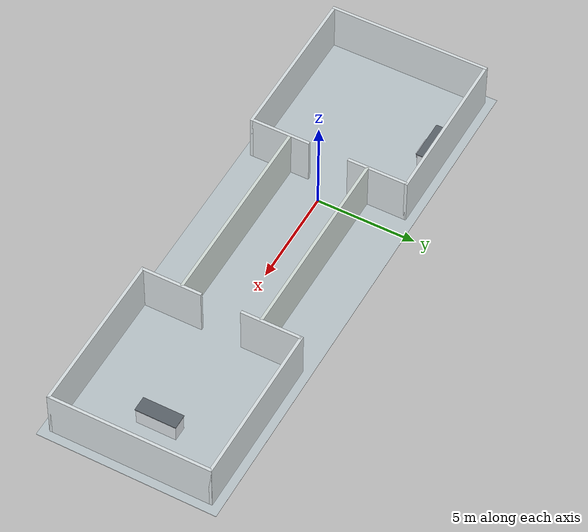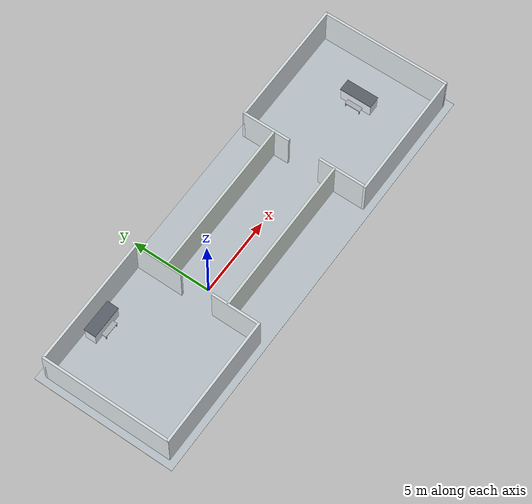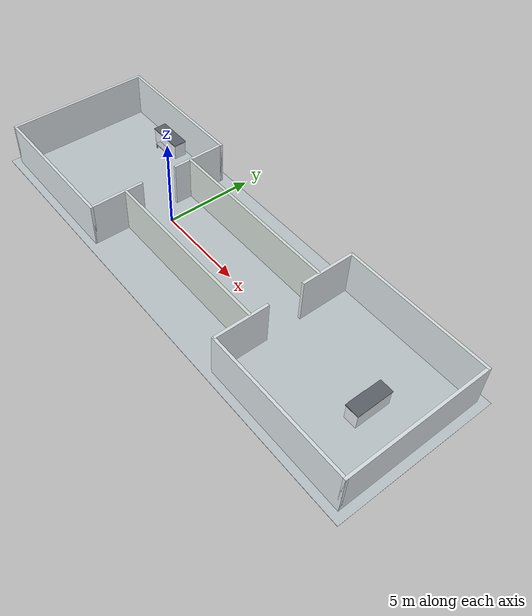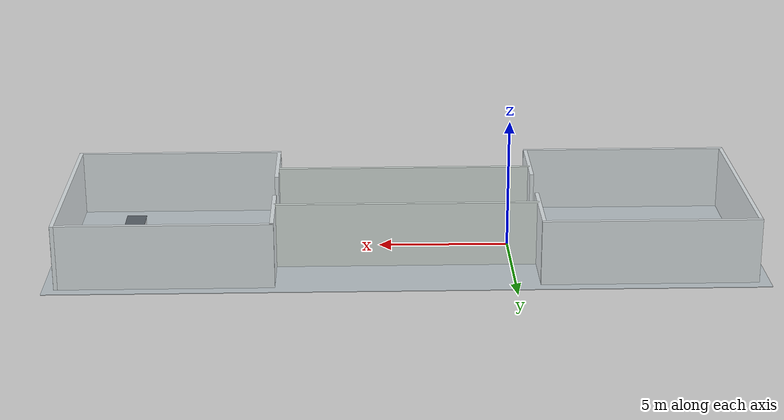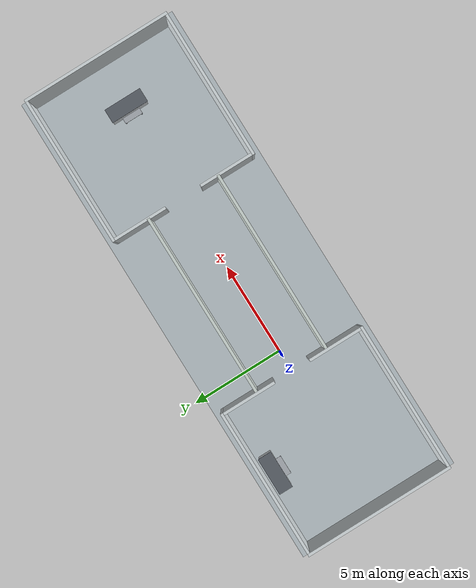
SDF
<sdf version="1.7">
 <world name="hospital_lab">
  <gravity>0 0 -9.8</gravity>
  <physics type="ode"><max_step_size>0.01</max_step_size><real_time_factor>1</real_time_factor></physics>
  <plugin name="ignition::gazebo::systems::Physics" filename="libignition-gazebo-physics-system.so"/>
  <plugin name="ignition::gazebo::systems::UserCommands" filename="libignition-gazebo-user-commands-system.so"/>
  <plugin name="ignition::gazebo::systems::SceneBroadcaster" filename="libignition-gazebo-scene-broadcaster-system.so"/>
  <plugin name="ignition::gazebo::systems::Imu" filename="ignition-gazebo-imu-system"/>
  <plugin name="ignition::gazebo::systems::Sensors" filename="ignition-gazebo-sensors-system">
   <render_engine>ogre2</render_engine>
  </plugin>
  <scene>
   <ambient>1 1 1 1</ambient>
   <background>0.3 0.7 0.9 1</background>
   <shadows>0</shadows>
   <grid>false</grid>
  </scene>
  <light type="directional" name="sun">
   <cast_shadows>0</cast_shadows>
   <pose>-5 -3 10 0 0 0</pose>
   <diffuse>1 1 1 1</diffuse>
   <specular>1 1 1 1</specular>
   <direction>0 0 -1</direction>
  </light>
  <model name="ground_plane">
   <static>true</static>
   <link name="link">
    <collision name="collision">
     <geometry><plane><normal>0.0 0.0 1</normal><size>1 1</size></plane></geometry>
    </collision>
   </link>
  </model>
  <model name="floor">
   <static>true</static>
   <pose>4.0 0 -0.01 0 0 0</pose>
   <link name="link">
    <visual name="visual">
     <geometry><box><size>27.0 9.0 0.02</size></box></geometry>
     <material>
      <ambient>0.62 0.66 0.68 1</ambient>
      <diffuse>0.74 0.78 0.80 1</diffuse>
      <specular>0.1 0.1 0.1 1</specular>
     </material>
    </visual>
   </link>
  </model>
  <model name="wall_lab_west">
   <static>true</static>
   <pose>-9.0 0 1.25 0 0 0</pose>
   <link name="link">
    <collision name="c"><geometry><box><size>0.15 8.15 2.5</size></box></geometry></collision>
    <visual name="v">
     <geometry><box><size>0.15 8.15 2.5</size></box></geometry>
     <material><ambient>0.72 0.75 0.76 1</ambient><diffuse>0.86 0.89 0.90 1</diffuse></material>
    </visual>
   </link>
  </model>
  <model name="wall_lab_north">
   <static>true</static>
   <pose>-5.0 4.0 1.25 0 0 0</pose>
   <link name="link">
    <collision name="c"><geometry><box><size>8.15 0.15 2.5</size></box></geometry></collision>
    <visual name="v">
     <geometry><box><size>8.15 0.15 2.5</size></box></geometry>
     <material><ambient>0.72 0.75 0.76 1</ambient><diffuse>0.86 0.89 0.90 1</diffuse></material>
    </visual>
   </link>
  </model>
  <model name="wall_lab_south">
   <static>true</static>
   <pose>-5.0 -4.0 1.25 0 0 0</pose>
   <link name="link">
    <collision name="c"><geometry><box><size>8.15 0.15 2.5</size></box></geometry></collision>
    <visual name="v">
     <geometry><box><size>8.15 0.15 2.5</size></box></geometry>
     <material><ambient>0.72 0.75 0.76 1</ambient><diffuse>0.86 0.89 0.90 1</diffuse></material>
    </visual>
   </link>
  </model>
  <model name="wall_lab_east_north">
   <static>true</static>
   <pose>-1.0 2.5 1.25 0 0 0</pose>
   <link name="link">
    <collision name="c"><geometry><box><size>0.15 3.0 2.5</size></box></geometry></collision>
    <visual name="v">
     <geometry><box><size>0.15 3.0 2.5</size></box></geometry>
     <material><ambient>0.72 0.75 0.76 1</ambient><diffuse>0.86 0.89 0.90 1</diffuse></material>
    </visual>
   </link>
  </model>
  <model name="wall_lab_east_south">
   <static>true</static>
   <pose>-1.0 -2.5 1.25 0 0 0</pose>
   <link name="link">
    <collision name="c"><geometry><box><size>0.15 3.0 2.5</size></box></geometry></collision>
    <visual name="v">
     <geometry><box><size>0.15 3.0 2.5</size></box></geometry>
     <material><ambient>0.72 0.75 0.76 1</ambient><diffuse>0.86 0.89 0.90 1</diffuse></material>
    </visual>
   </link>
  </model>
  <model name="wall_corridor_north">
   <static>true</static>
   <pose>4.0 2.0 1.25 0 0 0</pose>
   <link name="link">
    <collision name="c"><geometry><box><size>10.0 0.15 2.5</size></box></geometry></collision>
    <visual name="v">
     <geometry><box><size>10.0 0.15 2.5</size></box></geometry>
     <material><ambient>0.70 0.74 0.72 1</ambient><diffuse>0.84 0.88 0.86 1</diffuse></material>
    </visual>
   </link>
  </model>
  <model name="wall_corridor_south">
   <static>true</static>
   <pose>4.0 -2.0 1.25 0 0 0</pose>
   <link name="link">
    <collision name="c"><geometry><box><size>10.0 0.15 2.5</size></box></geometry></collision>
    <visual name="v">
     <geometry><box><size>10.0 0.15 2.5</size></box></geometry>
     <material><ambient>0.70 0.74 0.72 1</ambient><diffuse>0.84 0.88 0.86 1</diffuse></material>
    </visual>
   </link>
  </model>
  <model name="wall_ward_east">
   <static>true</static>
   <pose>17.0 0 1.25 0 0 0</pose>
   <link name="link">
    <collision name="c"><geometry><box><size>0.15 8.15 2.5</size></box></geometry></collision>
    <visual name="v">
     <geometry><box><size>0.15 8.15 2.5</size></box></geometry>
     <material><ambient>0.72 0.75 0.76 1</ambient><diffuse>0.86 0.89 0.90 1</diffuse></material>
    </visual>
   </link>
  </model>
  <model name="wall_ward_north">
   <static>true</static>
   <pose>13.0 4.0 1.25 0 0 0</pose>
   <link name="link">
    <collision name="c"><geometry><box><size>8.15 0.15 2.5</size></box></geometry></collision>
    <visual name="v">
     <geometry><box><size>8.15 0.15 2.5</size></box></geometry>
     <material><ambient>0.72 0.75 0.76 1</ambient><diffuse>0.86 0.89 0.90 1</diffuse></material>
    </visual>
   </link>
  </model>
  <model name="wall_ward_south">
   <static>true</static>
   <pose>13.0 -4.0 1.25 0 0 0</pose>
   <link name="link">
    <collision name="c"><geometry><box><size>8.15 0.15 2.5</size></box></geometry></collision>
    <visual name="v">
     <geometry><box><size>8.15 0.15 2.5</size></box></geometry>
     <material><ambient>0.72 0.75 0.76 1</ambient><diffuse>0.86 0.89 0.90 1</diffuse></material>
    </visual>
   </link>
  </model>
  <model name="wall_ward_west_north">
   <static>true</static>
   <pose>9.0 2.5 1.25 0 0 0</pose>
   <link name="link">
    <collision name="c"><geometry><box><size>0.15 3.0 2.5</size></box></geometry></collision>
    <visual name="v">
     <geometry><box><size>0.15 3.0 2.5</size></box></geometry>
     <material><ambient>0.72 0.75 0.76 1</ambient><diffuse>0.86 0.89 0.90 1</diffuse></material>
    </visual>
   </link>
  </model>
  <model name="wall_ward_west_south">
   <static>true</static>
   <pose>9.0 -2.5 1.25 0 0 0</pose>
   <link name="link">
    <collision name="c"><geometry><box><size>0.15 3.0 2.5</size></box></geometry></collision>
    <visual name="v">
     <geometry><box><size>0.15 3.0 2.5</size></box></geometry>
     <material><ambient>0.72 0.75 0.76 1</ambient><diffuse>0.86 0.89 0.90 1</diffuse></material>
    </visual>
   </link>
  </model>
  <include>
   <uri>model://lab_bench</uri>
   <name>lab_bench_collect</name>
   <pose>-5.0 3.4 0 0 0 1.5708</pose>
  </include>
  <include><uri>model://lab_bench</uri><name>lab_bench_deliver</name><pose>14.5 0.0 0 0 0 0</pose></include>
 </world>
</sdf>

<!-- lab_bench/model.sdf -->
<sdf version="1.9">
  <model name="lab_bench">
    <static>true</static>
    <link name="link">

      <!-- Counter carcass: 0.70 deep, 2.00 wide, 0.90 tall. -->
      <collision name="carcass_collision">
        <pose>0 0 0.45 0 0 0</pose>
        <geometry><box><size>0.70 2.00 0.90</size></box></geometry>
      </collision>
      <visual name="carcass_visual">
        <pose>0 0 0.45 0 0 0</pose>
        <geometry><box><size>0.70 2.00 0.90</size></box></geometry>
        <material>
          <ambient>0.80 0.82 0.84 1</ambient>
          <diffuse>0.88 0.90 0.92 1</diffuse>
          <specular>0.2 0.2 0.2 1</specular>
        </material>
      </visual>

      <!-- Worktop, overhanging the carcass on every side. -->
      <collision name="worktop_collision">
        <pose>0 0 0.92 0 0 0</pose>
        <geometry><box><size>0.76 2.06 0.04</size></box></geometry>
      </collision>
      <visual name="worktop_visual">
        <pose>0 0 0.92 0 0 0</pose>
        <geometry><box><size>0.76 2.06 0.04</size></box></geometry>
        <material>
          <ambient>0.28 0.30 0.33 1</ambient>
          <diffuse>0.36 0.39 0.42 1</diffuse>
          <specular>0.4 0.4 0.4 1</specular>
        </material>
      </visual>

      <!-- Transfer shelf: slab top at z = 0.30, protruding 0.30 m in -x. -->
      <collision name="shelf_collision">
        <pose>-0.50 0 0.275 0 0 0</pose>
        <geometry><box><size>0.30 1.00 0.05</size></box></geometry>
      </collision>
      <visual name="shelf_visual">
        <pose>-0.50 0 0.275 0 0 0</pose>
        <geometry><box><size>0.30 1.00 0.05</size></box></geometry>
        <material>
          <ambient>0.55 0.57 0.60 1</ambient>
          <diffuse>0.68 0.70 0.73 1</diffuse>
          <specular>0.5 0.5 0.5 1</specular>
        </material>
      </visual>

      <!-- Shelf legs, inset from the slab's outer corners. -->
      <collision name="shelf_leg_left_collision">
        <pose>-0.62 0.45 0.1375 0 0 0</pose>
        <geometry><box><size>0.05 0.05 0.275</size></box></geometry>
      </collision>
      <visual name="shelf_leg_left_visual">
        <pose>-0.62 0.45 0.1375 0 0 0</pose>
        <geometry><box><size>0.05 0.05 0.275</size></box></geometry>
        <material>
          <ambient>0.45 0.47 0.50 1</ambient>
          <diffuse>0.58 0.60 0.63 1</diffuse>
        </material>
      </visual>
      <collision name="shelf_leg_right_collision">
        <pose>-0.62 -0.45 0.1375 0 0 0</pose>
        <geometry><box><size>0.05 0.05 0.275</size></box></geometry>
      </collision>
      <visual name="shelf_leg_right_visual">
        <pose>-0.62 -0.45 0.1375 0 0 0</pose>
        <geometry><box><size>0.05 0.05 0.275</size></box></geometry>
        <material>
          <ambient>0.45 0.47 0.50 1</ambient>
          <diffuse>0.58 0.60 0.63 1</diffuse>
        </material>
      </visual>

    </link>
  </model>
</sdf>
